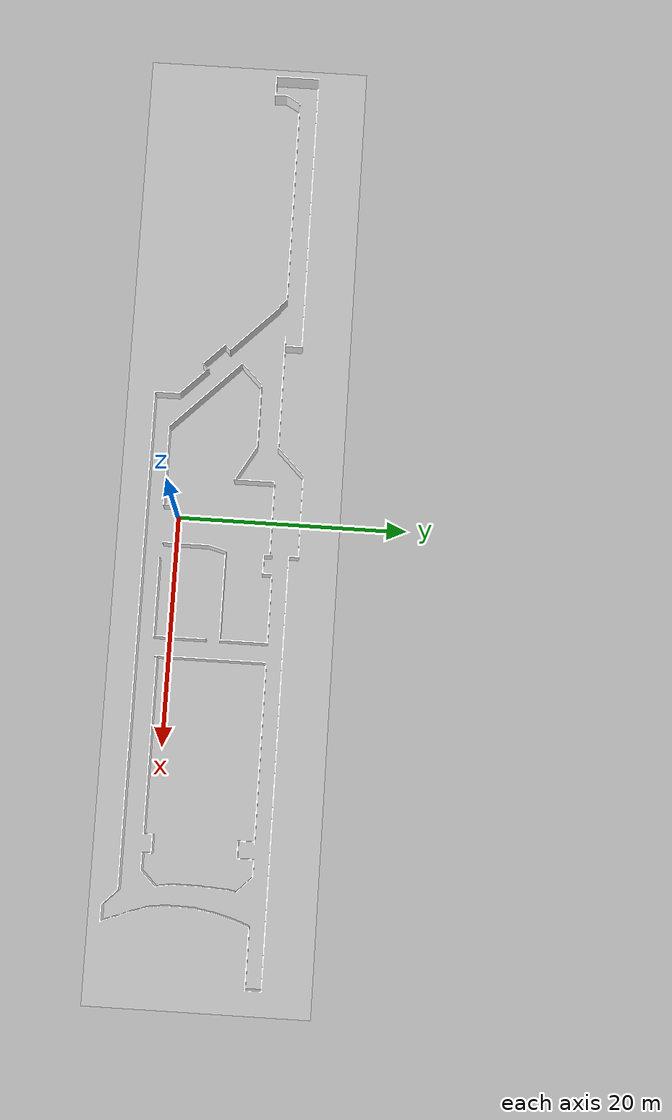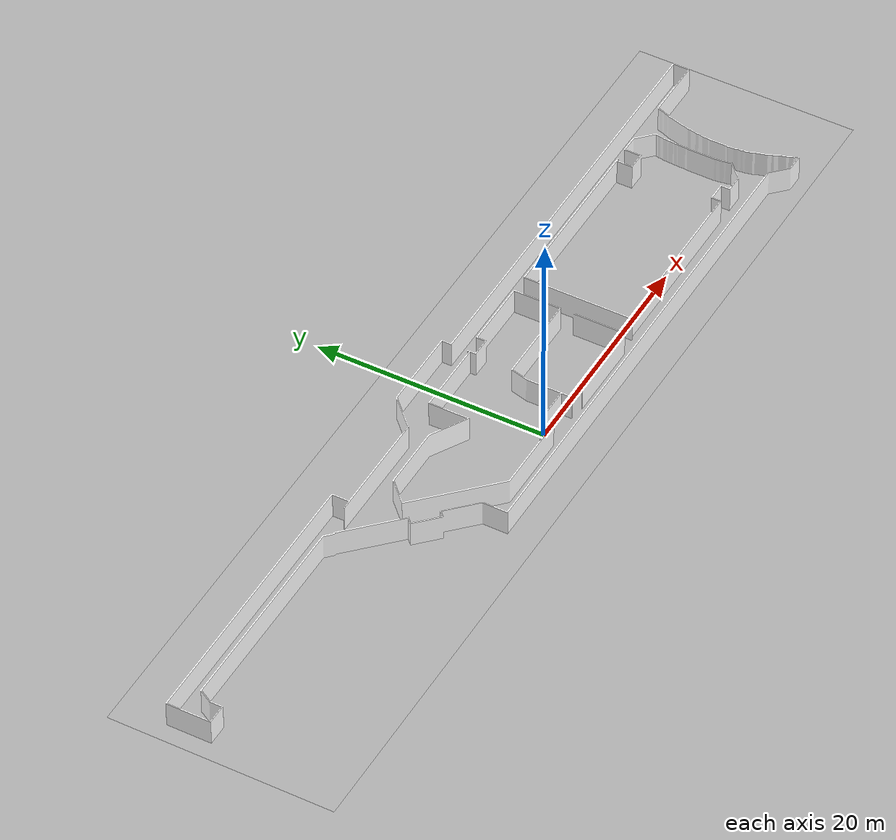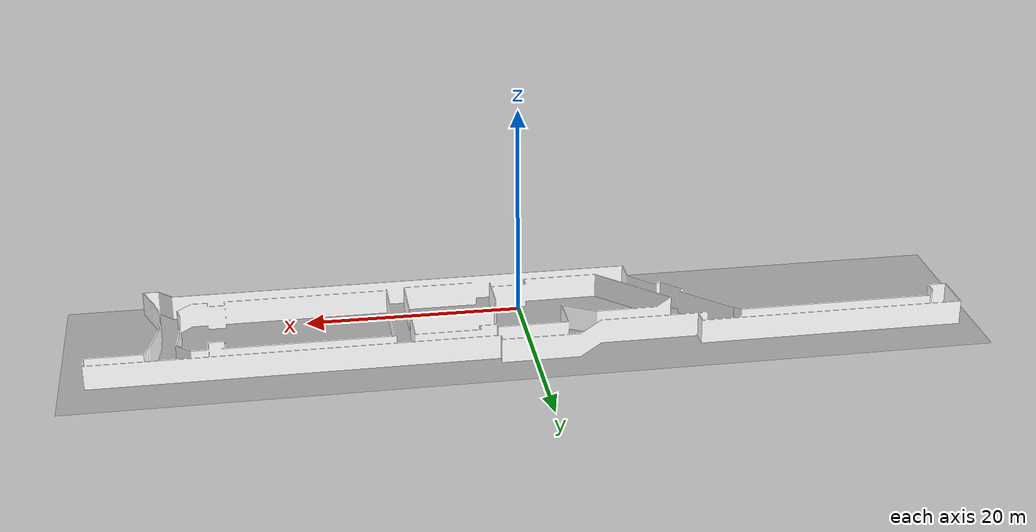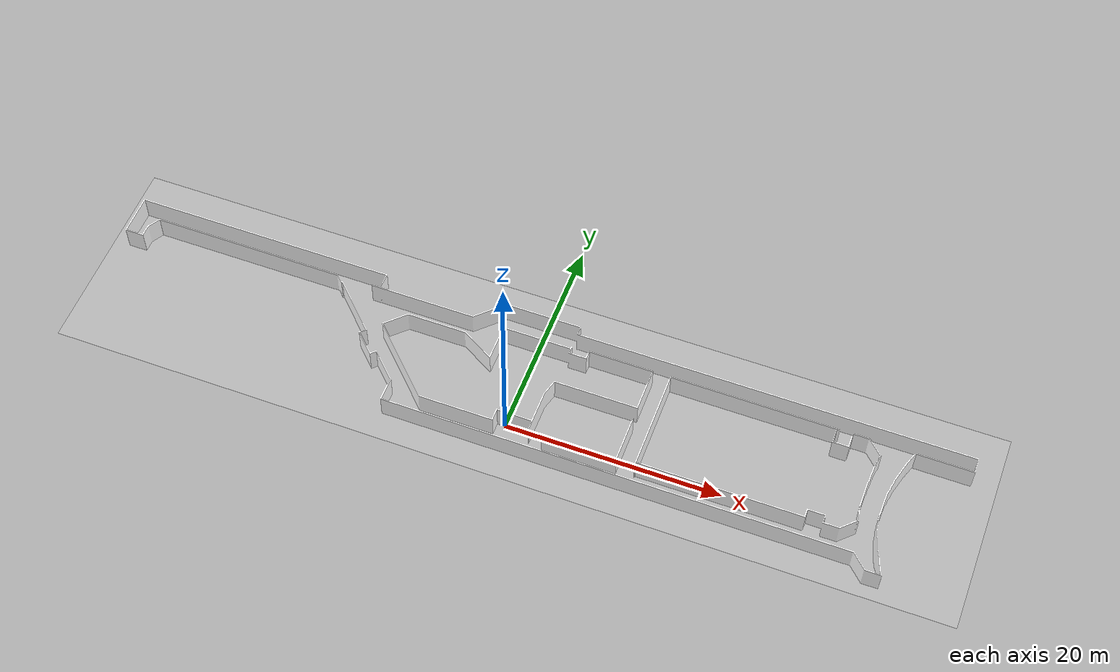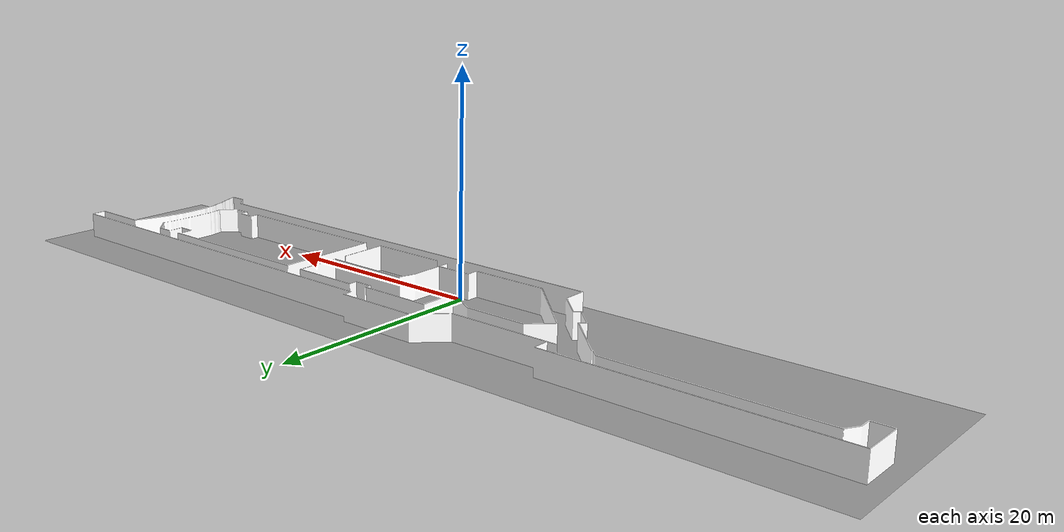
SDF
<?xml version="1.0" ?>
<sdf version="1.2">
  <model name="Dia">
    <static>true</static>
    <pose>0 0 0 0 0 0</pose>
    <link name="walls">
      <collision name="collision">
        <geometry>
          <mesh>
            <uri>model://dia/dia.dae</uri>
          </mesh>
        </geometry>
      </collision>
      <visual name="visual">
        <geometry>
          <mesh>
            <uri>model://dia/dia.dae</uri>
          </mesh>
        </geometry>
        <cast_shadows>false</cast_shadows>
      </visual>
    </link>
  </model>
</sdf>
